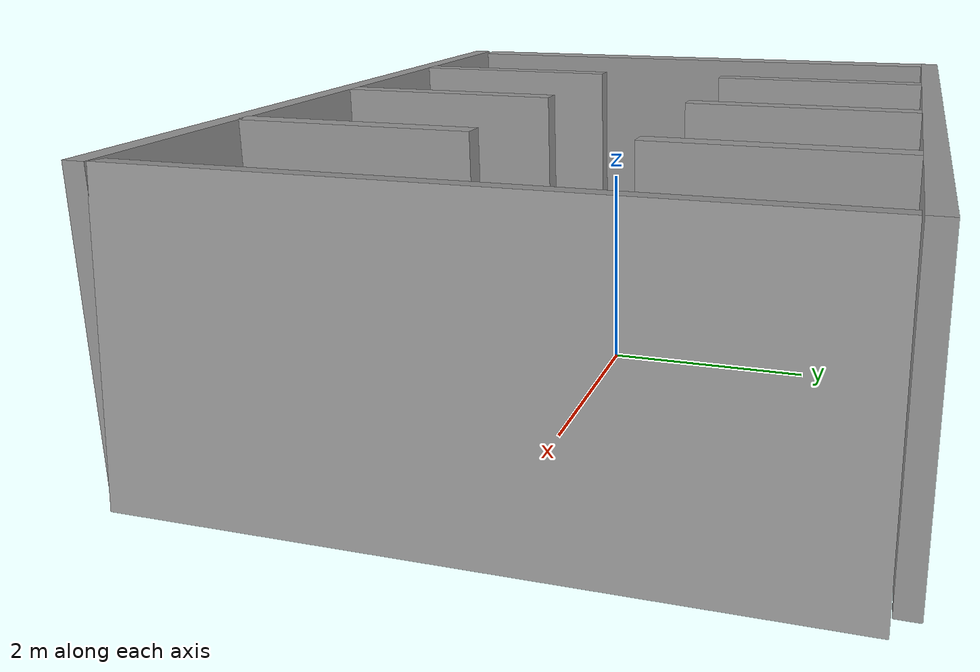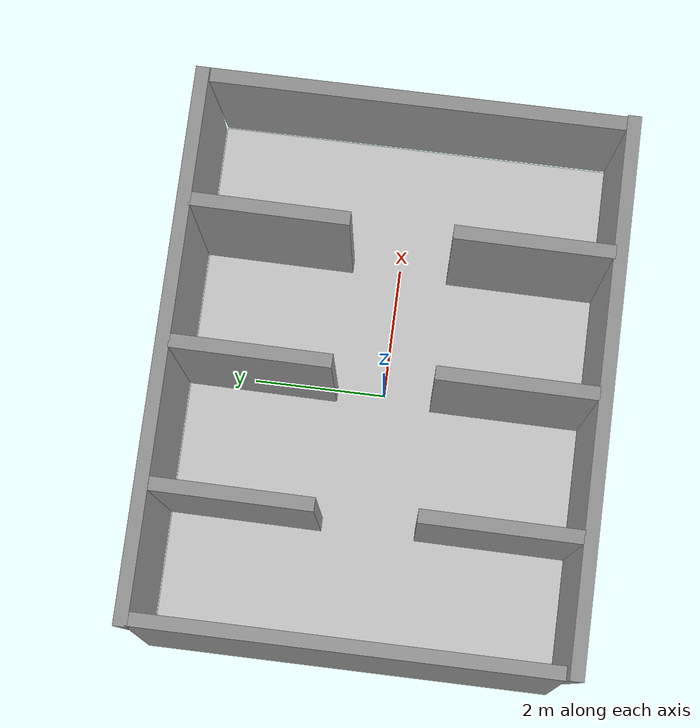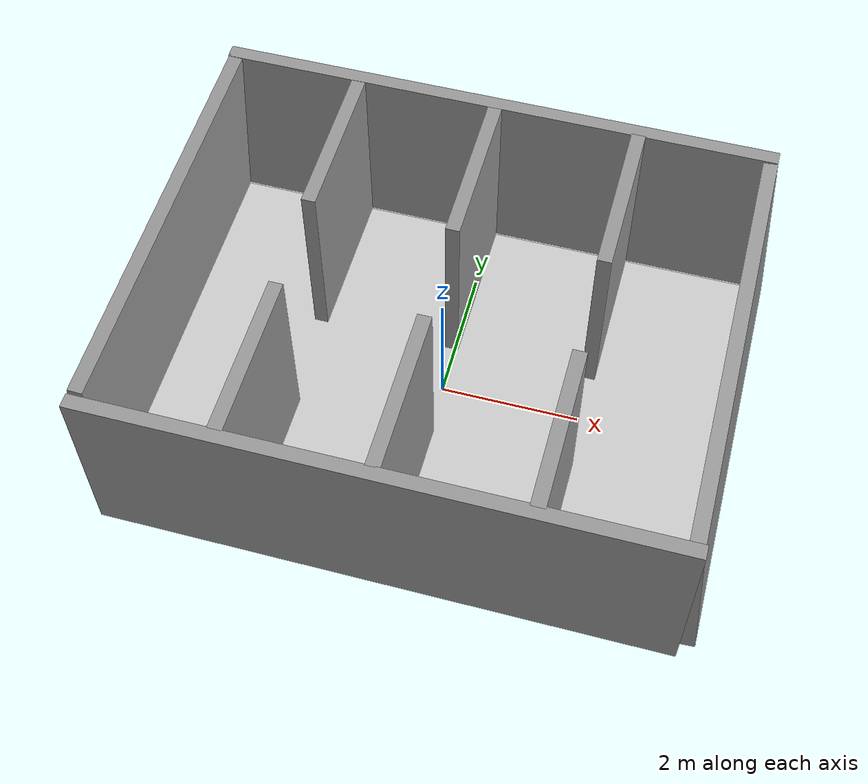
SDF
<sdf version="1.6">
 <world name="default">
  <light name="sun" type="directional">
   <pose>0 0 10 0 -0 0</pose>
   <diffuse>0.8 0.8 0.8 1</diffuse>
   <specular>0.1 0.1 0.1 1</specular>
   <attenuation>
    <range>1000</range>
    <constant>0.9</constant>
    <linear>0.01</linear>
    <quadratic>0.001</quadratic>
   </attenuation>
   <direction>-0.5 0.5 -1</direction>
  </light>
  <model name="colorselectingplane">
   <static>1</static>
   <link name="link">
    <collision name="collision">
     <geometry><plane><normal>0 0 1</normal><size>8 6</size></plane></geometry>
     <surface><friction><ode><mu>100</mu><mu2>50</mu2></ode></friction></surface>
    </collision>
    <visual name="visual">
     <cast_shadows>0</cast_shadows>
     <geometry><plane><normal>0 0 1</normal><size>8 6</size></plane></geometry>
     <material>
      <script>
       <uri>model://colorselectingplane/materials/scripts</uri>
       <uri>model://colorselectingplane/materials/textures</uri>
       <name>ColorSelectingPlane/Image</name>
      </script>
     </material>
    </visual>
   </link>
  </model>
  <gravity>0 0 -9.8</gravity>
  <magnetic_field>6e-06 2.3e-05 -4.2e-05</magnetic_field>
  <atmosphere type="adiabatic"/>
  <physics name="default_physics" default="0" type="ode">
   <max_step_size>0.001</max_step_size>
   <real_time_factor>1</real_time_factor>
   <real_time_update_rate>1000</real_time_update_rate>
  </physics>
  <scene><ambient>0.4 0.4 0.4 1</ambient><background>0.7 0.7 0.7 1</background><shadows>1</shadows></scene>
  <spherical_coordinates>
   <surface_model>EARTH_WGS84</surface_model>
   <latitude_deg>0</latitude_deg>
   <longitude_deg>0</longitude_deg>
   <elevation>0</elevation>
   <heading_deg>0</heading_deg>
  </spherical_coordinates>
  <model name="grey_wall">
   <static>1</static>
   <link name="link">
    <pose>0 0 1.4 0 -0 0</pose>
    <collision name="collision"><geometry><box><size>8 0.2 2.8</size></box></geometry></collision>
    <visual name="visual">
     <cast_shadows>0</cast_shadows>
     <geometry><box><size>8 0.2 2.8</size></box></geometry>
     <material>
      <script>
       <uri>model://grey_wall/materials/scripts</uri>
       <uri>model://grey_wall/materials/textures</uri>
       <name>vrc/grey_wall</name>
      </script>
     </material>
    </visual>
   </link>
   <pose>-0.00599 -3.09916 0 0 -0 0</pose>
  </model>
  <model name="grey_wall_clone">
   <static>1</static>
   <link name="link">
    <pose>0 0 1.4 0 -0 0</pose>
    <collision name="collision"><geometry><box><size>8 0.2 2.8</size></box></geometry></collision>
    <visual name="visual">
     <cast_shadows>0</cast_shadows>
     <geometry><box><size>8 0.2 2.8</size></box></geometry>
     <material>
      <script>
       <uri>model://grey_wall/materials/scripts</uri>
       <uri>model://grey_wall/materials/textures</uri>
       <name>vrc/grey_wall</name>
      </script>
     </material>
    </visual>
   </link>
   <pose>-0.033899 3.10951 0 0 -0 0</pose>
  </model>
  <model name="grey_wall_clone_0">
   <static>1</static>
   <link name="link">
    <pose>0 0 1.4 0 -0 0</pose>
    <collision name="collision"><geometry><box><size>6 0.2 2.8</size></box></geometry></collision>
    <visual name="visual">
     <cast_shadows>0</cast_shadows>
     <geometry><box><size>6 0.2 2.8</size></box></geometry>
     <material>
      <script>
       <uri>model://grey_wall/materials/scripts</uri>
       <uri>model://grey_wall/materials/textures</uri>
       <name>vrc/grey_wall</name>
      </script>
     </material>
    </visual>
   </link>
   <pose>-4.09727 0.047289 0 -0.065038 -0 -1.57009</pose>
  </model>
  <model name="grey_wall_clone_0_clone">
   <static>1</static>
   <link name="link">
    <pose>0 0 1.4 0 -0 0</pose>
    <collision name="collision"><geometry><box><size>6 0.2 2.8</size></box></geometry></collision>
    <visual name="visual">
     <cast_shadows>0</cast_shadows>
     <geometry><box><size>6 0.2 2.8</size></box></geometry>
     <material>
      <script>
       <uri>model://grey_wall/materials/scripts</uri>
       <uri>model://grey_wall/materials/textures</uri>
       <name>vrc/grey_wall</name>
      </script>
     </material>
    </visual>
   </link>
   <pose>4.11311 -0.005529 1e-06 0.087461 -0 -1.57009</pose>
  </model>
  <model name="grey_wall_0">
   <static>1</static>
   <link name="link">
    <pose>0 0 1.4 0 -0 0</pose>
    <collision name="collision"><geometry><box><size>2.3 0.2 2.8</size></box></geometry></collision>
    <visual name="visual">
     <cast_shadows>0</cast_shadows>
     <geometry><box><size>2.3 0.2 2.8</size></box></geometry>
     <material>
      <script>
       <uri>model://grey_wall/materials/scripts</uri>
       <uri>model://grey_wall/materials/textures</uri>
       <name>vrc/grey_wall</name>
      </script>
     </material>
    </visual>
   </link>
   <pose>-2.05504 -1.8623 0 0 0 -1.57745</pose>
  </model>
  <model name="grey_wall_0_clone">
   <static>1</static>
   <link name="link">
    <pose>0 0 1.4 0 -0 0</pose>
    <collision name="collision"><geometry><box><size>2.3 0.2 2.8</size></box></geometry></collision>
    <visual name="visual">
     <cast_shadows>0</cast_shadows>
     <geometry><box><size>2.3 0.2 2.8</size></box></geometry>
     <material>
      <script>
       <uri>model://grey_wall/materials/scripts</uri>
       <uri>model://grey_wall/materials/textures</uri>
       <name>vrc/grey_wall</name>
      </script>
     </material>
    </visual>
   </link>
   <pose>-0.049968 -1.86446 0 0 0 -1.57745</pose>
  </model>
  <model name="grey_wall_0_clone_0">
   <static>1</static>
   <link name="link">
    <pose>0 0 1.4 0 -0 0</pose>
    <collision name="collision"><geometry><box><size>2.3 0.2 2.8</size></box></geometry></collision>
    <visual name="visual">
     <cast_shadows>0</cast_shadows>
     <geometry><box><size>2.3 0.2 2.8</size></box></geometry>
     <material>
      <script>
       <uri>model://grey_wall/materials/scripts</uri>
       <uri>model://grey_wall/materials/textures</uri>
       <name>vrc/grey_wall</name>
      </script>
     </material>
    </visual>
   </link>
   <pose>1.98257 -1.88196 0 0 0 -1.57745</pose>
  </model>
  <model name="grey_wall_0_clone_1">
   <static>1</static>
   <link name="link">
    <pose>0 0 1.4 0 -0 0</pose>
    <collision name="collision"><geometry><box><size>2.3 0.2 2.8</size></box></geometry></collision>
    <visual name="visual">
     <cast_shadows>0</cast_shadows>
     <geometry><box><size>2.3 0.2 2.8</size></box></geometry>
     <material>
      <script>
       <uri>model://grey_wall/materials/scripts</uri>
       <uri>model://grey_wall/materials/textures</uri>
       <name>vrc/grey_wall</name>
      </script>
     </material>
    </visual>
   </link>
   <pose>-2.06413 1.85788 0 0 0 -1.57745</pose>
  </model>
  <model name="grey_wall_0_clone_2">
   <static>1</static>
   <link name="link">
    <pose>0 0 1.4 0 -0 0</pose>
    <collision name="collision"><geometry><box><size>2.3 0.2 2.8</size></box></geometry></collision>
    <visual name="visual">
     <cast_shadows>0</cast_shadows>
     <geometry><box><size>2.3 0.2 2.8</size></box></geometry>
     <material>
      <script>
       <uri>model://grey_wall/materials/scripts</uri>
       <uri>model://grey_wall/materials/textures</uri>
       <name>vrc/grey_wall</name>
      </script>
     </material>
    </visual>
   </link>
   <pose>-0.05205 1.87447 0 0 0 -1.57745</pose>
  </model>
  <model name="grey_wall_0_clone_3">
   <static>1</static>
   <link name="link">
    <pose>0 0 1.4 0 -0 0</pose>
    <collision name="collision"><geometry><box><size>2.3 0.2 2.8</size></box></geometry></collision>
    <visual name="visual">
     <cast_shadows>0</cast_shadows>
     <geometry><box><size>2.3 0.2 2.8</size></box></geometry>
     <material>
      <script>
       <uri>model://grey_wall/materials/scripts</uri>
       <uri>model://grey_wall/materials/textures</uri>
       <name>vrc/grey_wall</name>
      </script>
     </material>
    </visual>
   </link>
   <pose>2.00596 1.88263 0 0 0 -1.57745</pose>
  </model>
 </world>
</sdf>
